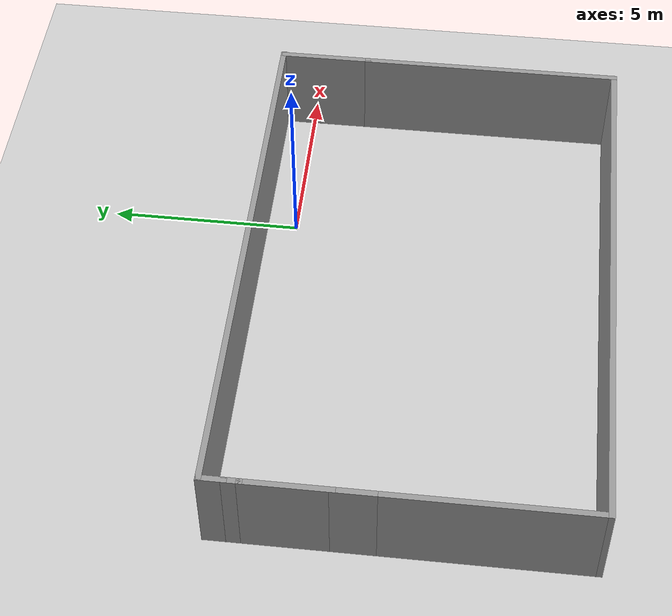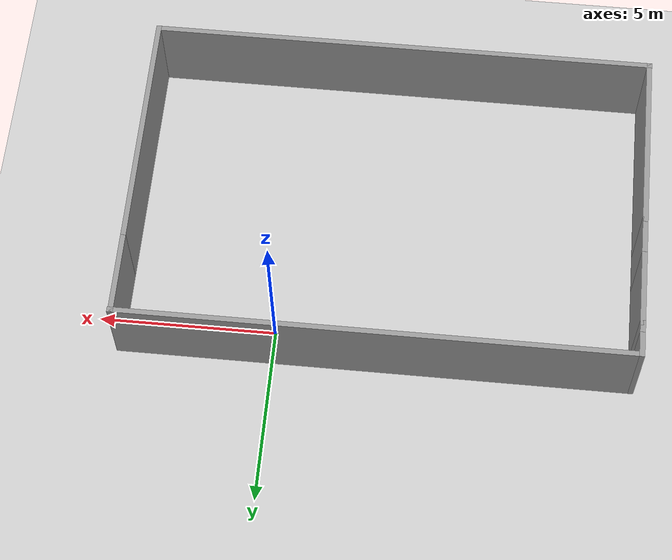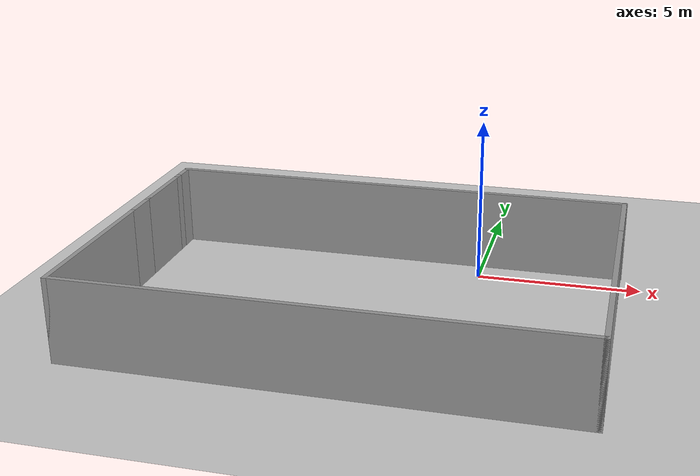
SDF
<sdf version="1.7">
 <world name="default">
  <model name="ground_plane">
   <static>1</static>
   <link name="link">
    <collision name="collision">
     <geometry><plane><normal>0 0 1</normal><size>100 100</size></plane></geometry>
     <surface><friction><ode><mu>100</mu><mu2>50</mu2></ode></friction></surface>
    </collision>
    <visual name="visual">
     <cast_shadows>0</cast_shadows>
     <geometry><plane><normal>0 0 1</normal><size>100 100</size></plane></geometry>
     <material>
      <script><uri>file://media/materials/scripts/gazebo.material</uri><name>Gazebo/Grey</name></script>
     </material>
    </visual>
   </link>
  </model>
  <model name="half_square">
   <pose>-2.87363 -3.76482 0 0 -0 0</pose>
   <link name="Wall_0">
    <collision name="Wall_0_Collision">
     <geometry><box><size>14.5 0.15 2.5</size></box></geometry>
     <pose>0 0 1.25 0 -0 0</pose>
    </collision>
    <visual name="Wall_0_Visual">
     <pose>0 0 1.25 0 -0 0</pose>
     <geometry><box><size>14.5 0.15 2.5</size></box></geometry>
     <material>
      <script><uri>file://media/materials/scripts/gazebo.material</uri><name>Gazebo/Grey</name></script>
      <ambient>1 1 1 1</ambient>
     </material>
     <meta><layer>0</layer></meta>
    </visual>
    <pose>-0.010056 -4.61503 0 0 -0 0</pose>
   </link>
   <link name="Wall_11">
    <collision name="Wall_11_Collision">
     <geometry><box><size>2.5 0.15 2.5</size></box></geometry>
     <pose>0 0 1.25 0 -0 0</pose>
    </collision>
    <visual name="Wall_11_Visual">
     <pose>0 0 1.25 0 -0 0</pose>
     <geometry><box><size>2.5 0.15 2.5</size></box></geometry>
     <material>
      <script><uri>file://media/materials/scripts/gazebo.material</uri><name>Gazebo/Grey</name></script>
      <ambient>1 1 1 1</ambient>
     </material>
     <meta><layer>0</layer></meta>
    </visual>
    <pose>7.16494 3.40997 0 0 -0 1.5708</pose>
   </link>
   <link name="Wall_13">
    <collision name="Wall_13_Collision">
     <geometry><box><size>0.730235 0.15 2.5</size></box></geometry>
     <pose>0 0 1.25 0 -0 0</pose>
    </collision>
    <visual name="Wall_13_Visual">
     <pose>0 0 1.25 0 -0 0</pose>
     <geometry><box><size>0.730235 0.15 2.5</size></box></geometry>
     <material>
      <script><uri>file://media/materials/scripts/gazebo.material</uri><name>Gazebo/Grey</name></script>
      <ambient>1 1 1 1</ambient>
     </material>
     <meta><layer>0</layer></meta>
    </visual>
    <pose>-7.18506 4.32491 0 0 -0 1.5708</pose>
   </link>
   <link name="Wall_14">
    <collision name="Wall_14_Collision">
     <geometry><box><size>14.5 0.15 2.5</size></box></geometry>
     <pose>0 0 1.25 0 -0 0</pose>
    </collision>
    <visual name="Wall_14_Visual">
     <pose>0 0 1.25 0 -0 0</pose>
     <geometry><box><size>14.5 0.15 2.5</size></box></geometry>
     <material>
      <script><uri>file://media/materials/scripts/gazebo.material</uri><name>Gazebo/Grey</name></script>
      <ambient>1 1 1 1</ambient>
     </material>
     <meta><layer>0</layer></meta>
    </visual>
    <pose>0.010057 4.61486 0 0 -0 0</pose>
   </link>
   <link name="Wall_2">
    <collision name="Wall_2_Collision">
     <geometry><box><size>5.25 0.15 2.5</size></box></geometry>
     <pose>0 0 1.25 0 -0 0</pose>
    </collision>
    <visual name="Wall_2_Visual">
     <pose>0 0 1.25 0 -0 0</pose>
     <geometry><box><size>5.25 0.15 2.5</size></box></geometry>
     <material>
      <script><uri>file://media/materials/scripts/gazebo.material</uri><name>Gazebo/Grey</name></script>
      <ambient>1 1 1 1</ambient>
     </material>
     <meta><layer>0</layer></meta>
    </visual>
    <pose>-7.18506 -2.06503 0 0 -0 1.5708</pose>
   </link>
   <link name="Wall_4">
    <collision name="Wall_4_Collision">
     <geometry><box><size>7 0.15 2.5</size></box></geometry>
     <pose>0 0 1.25 0 -0 0</pose>
    </collision>
    <visual name="Wall_4_Visual">
     <pose>0 0 1.25 0 -0 0</pose>
     <geometry><box><size>7 0.15 2.5</size></box></geometry>
     <material>
      <script><uri>file://media/materials/scripts/gazebo.material</uri><name>Gazebo/Grey</name></script>
      <ambient>1 1 1 1</ambient>
     </material>
     <meta><layer>0</layer></meta>
    </visual>
    <pose>7.16494 -1.19003 0 0 -0 1.5708</pose>
   </link>
   <link name="Wall_6">
    <collision name="Wall_6_Collision">
     <geometry><box><size>1.25 0.15 2.5</size></box></geometry>
     <pose>0 0 1.25 0 -0 0</pose>
    </collision>
    <visual name="Wall_6_Visual">
     <pose>0 0 1.25 0 -0 0</pose>
     <geometry><box><size>1.25 0.15 2.5</size></box></geometry>
     <material>
      <script><uri>file://media/materials/scripts/gazebo.material</uri><name>Gazebo/Grey</name></script>
      <ambient>1 1 1 1</ambient>
     </material>
     <meta><layer>0</layer></meta>
    </visual>
    <pose>-7.18506 1.03497 0 0 -0 1.5708</pose>
   </link>
   <link name="Wall_8">
    <collision name="Wall_8_Collision">
     <geometry><box><size>2.25 0.15 2.5</size></box></geometry>
     <pose>0 0 1.25 0 -0 0</pose>
    </collision>
    <visual name="Wall_8_Visual">
     <pose>0 0 1.25 0 -0 0</pose>
     <geometry><box><size>2.25 0.15 2.5</size></box></geometry>
     <material>
      <script><uri>file://media/materials/scripts/gazebo.material</uri><name>Gazebo/Grey</name></script>
      <ambient>1 1 1 1</ambient>
     </material>
     <meta><layer>0</layer></meta>
    </visual>
    <pose>-7.18506 2.63497 0 0 -0 1.5708</pose>
   </link>
   <link name="Wall_9">
    <collision name="Wall_9_Collision">
     <geometry><box><size>0.5 0.15 2.5</size></box></geometry>
     <pose>0 0 1.25 0 -0 0</pose>
    </collision>
    <visual name="Wall_9_Visual">
     <pose>0 0 1.25 0 -0 0</pose>
     <geometry><box><size>0.5 0.15 2.5</size></box></geometry>
     <material>
      <script><uri>file://media/materials/scripts/gazebo.material</uri><name>Gazebo/Grey</name></script>
      <ambient>1 1 1 1</ambient>
     </material>
     <meta><layer>0</layer></meta>
    </visual>
    <pose>-7.18506 3.85997 0 0 -0 1.5708</pose>
   </link>
   <static>1</static>
  </model>
 </world>
</sdf>
